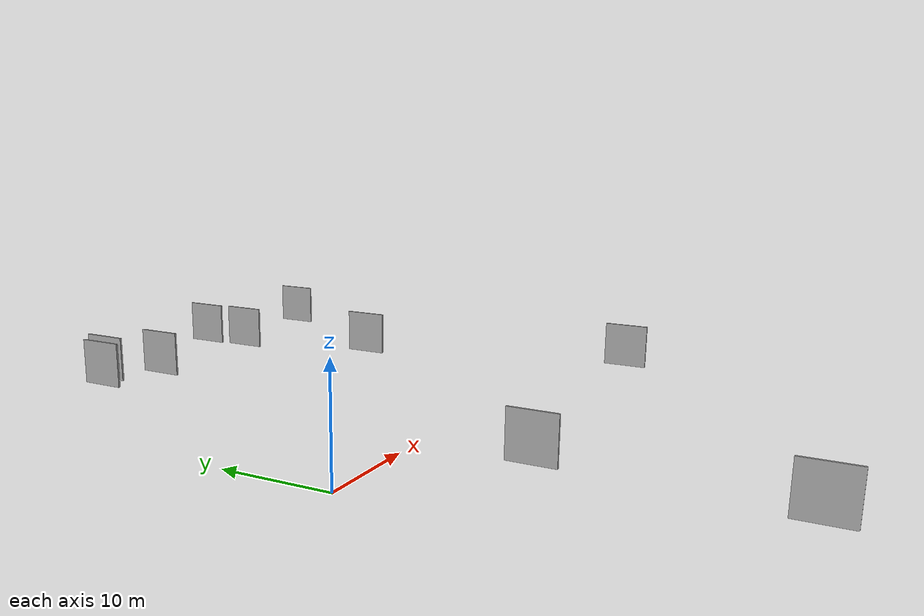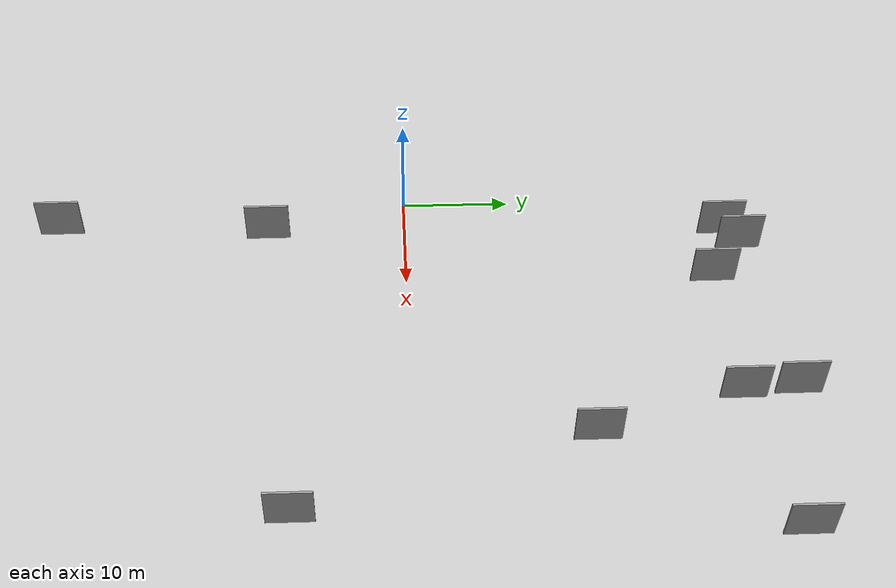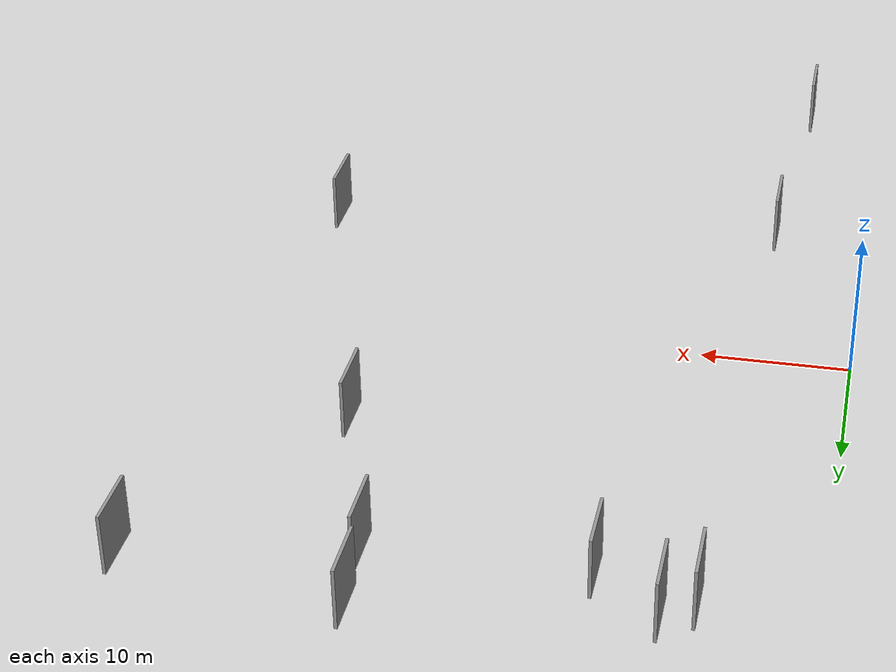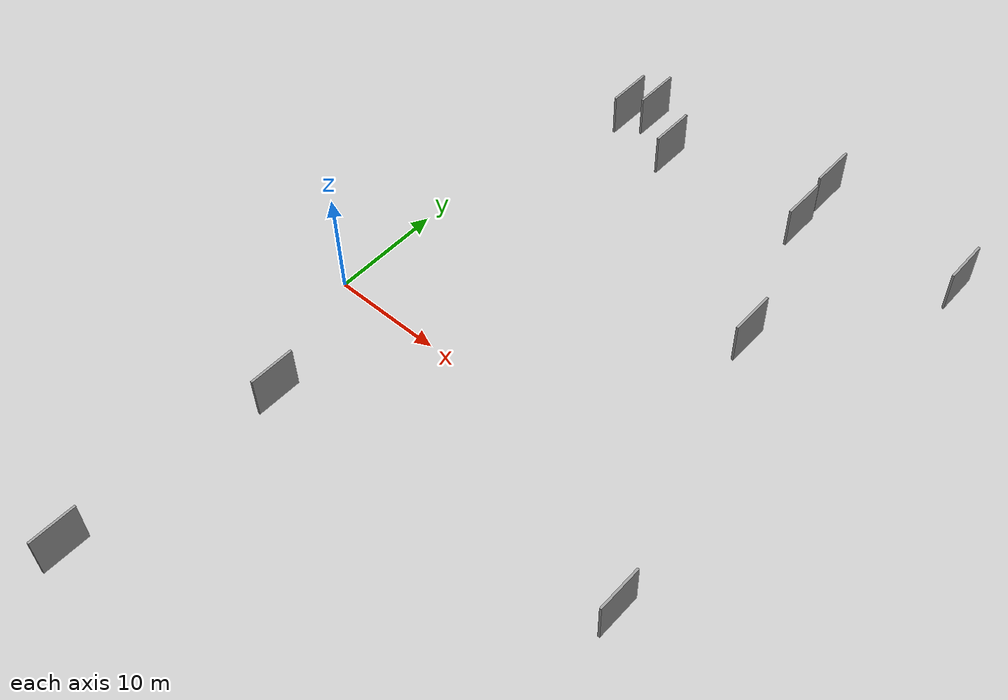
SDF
<sdf version="1.6">
 <world name="default">
  <scene>
   <sky><clouds><speed>12</speed></clouds></sky>
   <ambient>0.4 0.4 0.4 1</ambient>
   <background>0.7 0.7 0.7 1</background>
   <shadows>1</shadows>
  </scene>
  <gravity>0 0 -9.8066</gravity>
  <magnetic_field>6e-06 2.3e-05 -4.2e-05</magnetic_field>
  <physics default="0" name="default_physics" type="ode">
   <ode>
    <solver>
     <type>quick</type>
     <iters>10</iters>
     <sor>1.0</sor>
     <use_dynamic_moi_rescaling>0</use_dynamic_moi_rescaling>
    </solver>
    <constraints>
     <cfm>0</cfm>
     <erp>0.2</erp>
     <contact_max_correcting_vel>100</contact_max_correcting_vel>
     <contact_surface_layer>0.001</contact_surface_layer>
    </constraints>
   </ode>
   <max_step_size>0.004</max_step_size>
   <real_time_factor>1</real_time_factor>
   <real_time_update_rate>250</real_time_update_rate>
  </physics>
  <light name="sun" type="directional">
   <pose>0 0 10 0 0 0</pose>
   <diffuse>0.8 0.8 0.8 1</diffuse>
   <specular>0.2 0.2 0.2 1</specular>
   <attenuation>
    <range>1000</range>
    <constant>0.9</constant>
    <linear>0.01</linear>
    <quadratic>0.001</quadratic>
   </attenuation>
   <direction>-0.5 0.1 -0.9</direction>
  </light>
  <model name="grey_wall_1">
   <static>1</static>
   <pose>30.1937 15.2229 2.5 0.000000 0.000000 1.570796</pose>
   <link name="link">
    <pose>0 0 2.00 0 0 0</pose>
    <collision name="collision"><geometry><box><size>4.00 0.2 4.00</size></box></geometry></collision>
    <visual name="visual">
     <cast_shadows>0</cast_shadows>
     <geometry><box><size>4.00 0.2 4.00</size></box></geometry>
     <material>
      <script>
       <uri>model://grey_wall/materials/scripts</uri>
       <uri>model://grey_wall/materials/textures</uri>
       <name>vrc/grey_wall</name>
      </script>
     </material>
    </visual>
   </link>
  </model>
  <model name="grey_wall_2">
   <static>1</static>
   <pose>37.5128 -9.9371 2.5 0.000000 0.000000 1.570796</pose>
   <link name="link">
    <pose>0 0 2.00 0 0 0</pose>
    <collision name="collision"><geometry><box><size>4.00 0.2 4.00</size></box></geometry></collision>
    <visual name="visual">
     <cast_shadows>0</cast_shadows>
     <geometry><box><size>4.00 0.2 4.00</size></box></geometry>
     <material>
      <script>
       <uri>model://grey_wall/materials/scripts</uri>
       <uri>model://grey_wall/materials/textures</uri>
       <name>vrc/grey_wall</name>
      </script>
     </material>
    </visual>
   </link>
  </model>
  <model name="grey_wall_3">
   <static>1</static>
   <pose>5.0586 -31.7600 2.5 0.000000 0.000000 1.570796</pose>
   <link name="link">
    <pose>0 0 2.00 0 0 0</pose>
    <collision name="collision"><geometry><box><size>4.00 0.2 4.00</size></box></geometry></collision>
    <visual name="visual">
     <cast_shadows>0</cast_shadows>
     <geometry><box><size>4.00 0.2 4.00</size></box></geometry>
     <material>
      <script>
       <uri>model://grey_wall/materials/scripts</uri>
       <uri>model://grey_wall/materials/textures</uri>
       <name>vrc/grey_wall</name>
      </script>
     </material>
    </visual>
   </link>
  </model>
  <model name="grey_wall_4">
   <static>1</static>
   <pose>26.2413 27.9468 2.5 0.000000 0.000000 1.570796</pose>
   <link name="link">
    <pose>0 0 2.00 0 0 0</pose>
    <collision name="collision"><geometry><box><size>4.00 0.2 4.00</size></box></geometry></collision>
    <visual name="visual">
     <cast_shadows>0</cast_shadows>
     <geometry><box><size>4.00 0.2 4.00</size></box></geometry>
     <material>
      <script>
       <uri>model://grey_wall/materials/scripts</uri>
       <uri>model://grey_wall/materials/textures</uri>
       <name>vrc/grey_wall</name>
      </script>
     </material>
    </visual>
   </link>
  </model>
  <model name="grey_wall_5">
   <static>1</static>
   <pose>25.8962 32.6888 2.5 0.000000 0.000000 1.570796</pose>
   <link name="link">
    <pose>0 0 2.00 0 0 0</pose>
    <collision name="collision"><geometry><box><size>4.00 0.2 4.00</size></box></geometry></collision>
    <visual name="visual">
     <cast_shadows>0</cast_shadows>
     <geometry><box><size>4.00 0.2 4.00</size></box></geometry>
     <material>
      <script>
       <uri>model://grey_wall/materials/scripts</uri>
       <uri>model://grey_wall/materials/textures</uri>
       <name>vrc/grey_wall</name>
      </script>
     </material>
    </visual>
   </link>
  </model>
  <model name="grey_wall_6">
   <static>1</static>
   <pose>6.8552 29.1157 2.5 0.000000 0.000000 1.570796</pose>
   <link name="link">
    <pose>0 0 2.00 0 0 0</pose>
    <collision name="collision"><geometry><box><size>4.00 0.2 4.00</size></box></geometry></collision>
    <visual name="visual">
     <cast_shadows>0</cast_shadows>
     <geometry><box><size>4.00 0.2 4.00</size></box></geometry>
     <material>
      <script>
       <uri>model://grey_wall/materials/scripts</uri>
       <uri>model://grey_wall/materials/textures</uri>
       <name>vrc/grey_wall</name>
      </script>
     </material>
    </visual>
   </link>
  </model>
  <model name="grey_wall_7">
   <static>1</static>
   <pose>39.8704 30.6317 2.5 0.000000 0.000000 1.570796</pose>
   <link name="link">
    <pose>0 0 2.00 0 0 0</pose>
    <collision name="collision"><geometry><box><size>4.00 0.2 4.00</size></box></geometry></collision>
    <visual name="visual">
     <cast_shadows>0</cast_shadows>
     <geometry><box><size>4.00 0.2 4.00</size></box></geometry>
     <material>
      <script>
       <uri>model://grey_wall/materials/scripts</uri>
       <uri>model://grey_wall/materials/textures</uri>
       <name>vrc/grey_wall</name>
      </script>
     </material>
    </visual>
   </link>
  </model>
  <model name="grey_wall_8">
   <static>1</static>
   <pose>6.1975 -12.6273 2.5 0.000000 0.000000 1.570796</pose>
   <link name="link">
    <pose>0 0 2.00 0 0 0</pose>
    <collision name="collision"><geometry><box><size>4.00 0.2 4.00</size></box></geometry></collision>
    <visual name="visual">
     <cast_shadows>0</cast_shadows>
     <geometry><box><size>4.00 0.2 4.00</size></box></geometry>
     <material>
      <script>
       <uri>model://grey_wall/materials/scripts</uri>
       <uri>model://grey_wall/materials/textures</uri>
       <name>vrc/grey_wall</name>
      </script>
     </material>
    </visual>
   </link>
  </model>
  <model name="grey_wall_9">
   <static>1</static>
   <pose>12.8132 27.5528 2.5 0.000000 0.000000 1.570796</pose>
   <link name="link">
    <pose>0 0 2.00 0 0 0</pose>
    <collision name="collision"><geometry><box><size>4.00 0.2 4.00</size></box></geometry></collision>
    <visual name="visual">
     <cast_shadows>0</cast_shadows>
     <geometry><box><size>4.00 0.2 4.00</size></box></geometry>
     <material>
      <script>
       <uri>model://grey_wall/materials/scripts</uri>
       <uri>model://grey_wall/materials/textures</uri>
       <name>vrc/grey_wall</name>
      </script>
     </material>
    </visual>
   </link>
  </model>
  <model name="grey_wall_10">
   <static>1</static>
   <pose>8.7661 30.5039 2.5 0.000000 0.000000 1.570796</pose>
   <link name="link">
    <pose>0 0 2.00 0 0 0</pose>
    <collision name="collision"><geometry><box><size>4.00 0.2 4.00</size></box></geometry></collision>
    <visual name="visual">
     <cast_shadows>0</cast_shadows>
     <geometry><box><size>4.00 0.2 4.00</size></box></geometry>
     <material>
      <script>
       <uri>model://grey_wall/materials/scripts</uri>
       <uri>model://grey_wall/materials/textures</uri>
       <name>vrc/grey_wall</name>
      </script>
     </material>
    </visual>
   </link>
  </model>
 </world>
</sdf>
